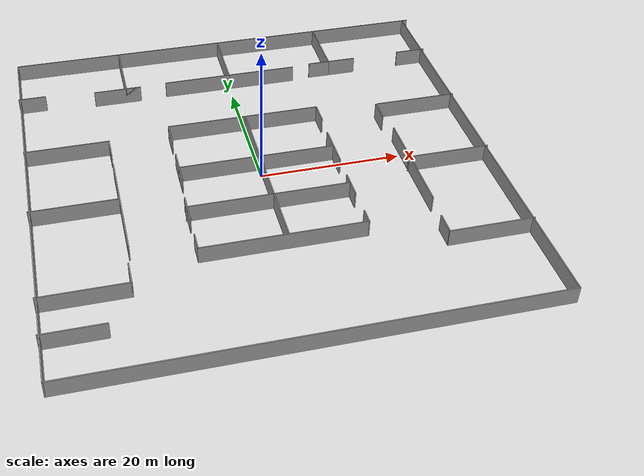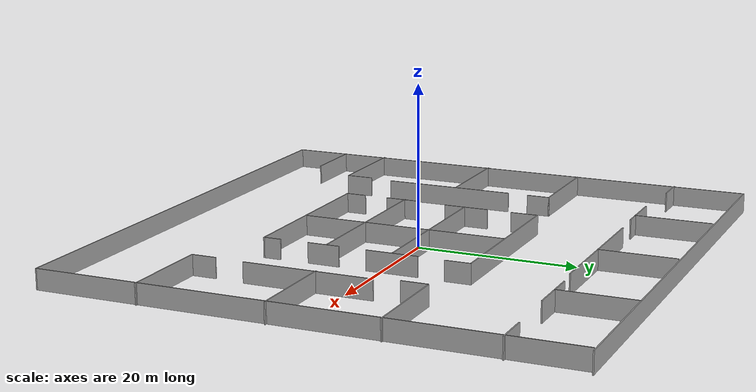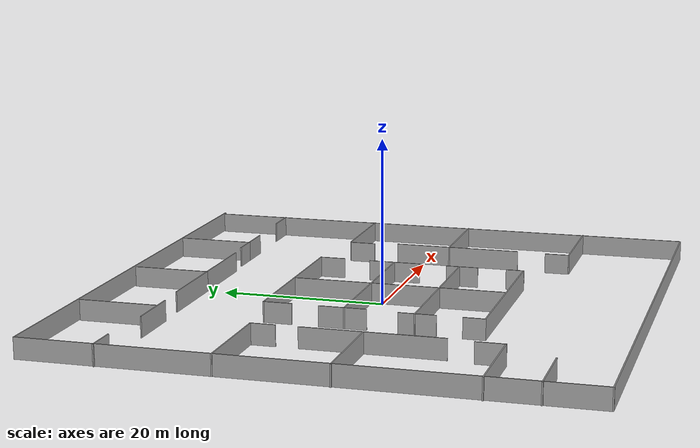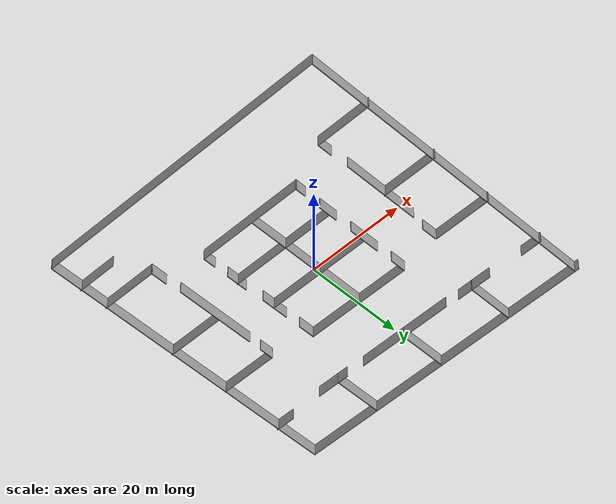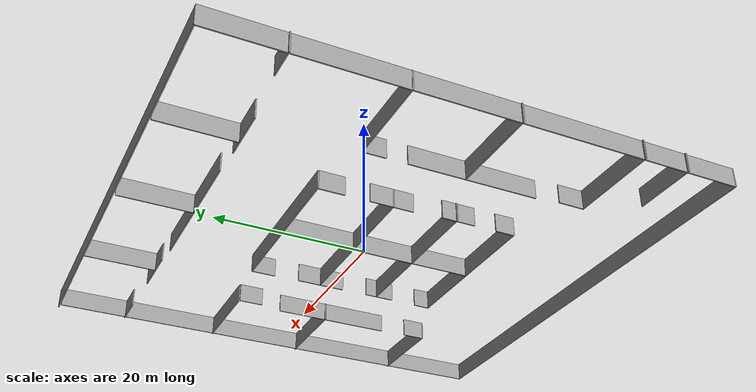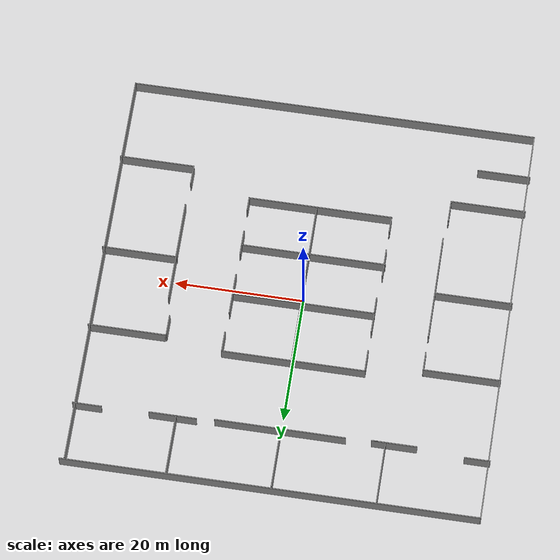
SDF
<?xml version='1.0'?>
<sdf version='1.6'>
  <model name='zc_hall'>
    <pose frame=''>0.197521 0.032452 0 0 -0 0</pose>
    <link name='Wall_1'>
      <collision name='Wall_1_Collision'>
        <geometry>
          <box>
            <size>26 0.15 2.5</size>
          </box>
        </geometry>
        <pose frame=''>0 0 1.25 0 -0 0</pose>
      </collision>
      <visual name='Wall_1_Visual'>
        <pose frame=''>0 0 1.25 0 -0 0</pose>
        <geometry>
          <box>
            <size>26 0.15 2.5</size>
          </box>
        </geometry>
        <material>
          <script>
            <uri>file://media/materials/scripts/gazebo.material</uri>
            <name>Gazebo/Grey</name>
          </script>
          <ambient>1 1 1 1</ambient>
        </material>
      </visual>
      <pose frame=''>-0.046242 -1.88487 0 0 0 -1.5708</pose>
    </link>
    <link name='Wall_10'>
      <collision name='Wall_10_Collision'>
        <geometry>
          <box>
            <size>2.65944 0.15 2.5</size>
          </box>
        </geometry>
        <pose frame=''>0 0 1.25 0 -0 0</pose>
      </collision>
      <visual name='Wall_10_Visual'>
        <pose frame=''>0 0 1.25 0 -0 0</pose>
        <geometry>
          <box>
            <size>2.65944 0.15 2.5</size>
          </box>
        </geometry>
        <material>
          <script>
            <uri>file://media/materials/scripts/gazebo.material</uri>
            <name>Gazebo/Grey</name>
          </script>
          <ambient>1 1 1 1</ambient>
        </material>
      </visual>
      <pose frame=''>-11.7683 -13.7788 0 0 0 -1.5708</pose>
    </link>
    <link name='Wall_12'>
      <collision name='Wall_12_Collision'>
        <geometry>
          <box>
            <size>22.25 0.15 2.5</size>
          </box>
        </geometry>
        <pose frame=''>0 0 1.25 0 -0 0</pose>
      </collision>
      <visual name='Wall_12_Visual'>
        <pose frame=''>0 0 1.25 0 -0 0</pose>
        <geometry>
          <box>
            <size>22.25 0.15 2.5</size>
          </box>
        </geometry>
        <material>
          <script>
            <uri>file://media/materials/scripts/gazebo.material</uri>
            <name>Gazebo/Grey</name>
          </script>
          <ambient>1 1 1 1</ambient>
        </material>
      </visual>
      <pose frame=''>-0.325448 11.0746 0 0 -0 0</pose>
    </link>
    <link name='Wall_13'>
      <collision name='Wall_13_Collision'>
        <geometry>
          <box>
            <size>3.25 0.15 2.5</size>
          </box>
        </geometry>
        <pose frame=''>0 0 1.25 0 -0 0</pose>
      </collision>
      <visual name='Wall_13_Visual'>
        <pose frame=''>0 0 1.25 0 -0 0</pose>
        <geometry>
          <box>
            <size>3.25 0.15 2.5</size>
          </box>
        </geometry>
        <material>
          <script>
            <uri>file://media/materials/scripts/gazebo.material</uri>
            <name>Gazebo/Grey</name>
          </script>
          <ambient>1 1 1 1</ambient>
        </material>
      </visual>
      <pose frame=''>10.7246 9.52459 0 0 0 -1.5708</pose>
    </link>
    <link name='Wall_16'>
      <collision name='Wall_16_Collision'>
        <geometry>
          <box>
            <size>3.5 0.15 2.5</size>
          </box>
        </geometry>
        <pose frame=''>0 0 1.25 0 -0 0</pose>
      </collision>
      <visual name='Wall_16_Visual'>
        <pose frame=''>0 0 1.25 0 -0 0</pose>
        <geometry>
          <box>
            <size>3.5 0.15 2.5</size>
          </box>
        </geometry>
        <material>
          <script>
            <uri>file://media/materials/scripts/gazebo.material</uri>
            <name>Gazebo/Grey</name>
          </script>
          <ambient>1 1 1 1</ambient>
        </material>
      </visual>
      <pose frame=''>-11.3754 9.39959 0 0 0 -1.5708</pose>
    </link>
    <link name='Wall_18'>
      <collision name='Wall_18_Collision'>
        <geometry>
          <box>
            <size>6.5 0.15 2.5</size>
          </box>
        </geometry>
        <pose frame=''>0 0 1.25 0 -0 0</pose>
      </collision>
      <visual name='Wall_18_Visual'>
        <pose frame=''>0 0 1.25 0 -0 0</pose>
        <geometry>
          <box>
            <size>6.5 0.15 2.5</size>
          </box>
        </geometry>
        <material>
          <script>
            <uri>file://media/materials/scripts/gazebo.material</uri>
            <name>Gazebo/Grey</name>
          </script>
          <ambient>1 1 1 1</ambient>
        </material>
      </visual>
      <pose frame=''>10.5781 1.36806 0 0 0 -1.5708</pose>
    </link>
    <link name='Wall_20'>
      <collision name='Wall_20_Collision'>
        <geometry>
          <box>
            <size>4 0.15 2.5</size>
          </box>
        </geometry>
        <pose frame=''>0 0 1.25 0 -0 0</pose>
      </collision>
      <visual name='Wall_20_Visual'>
        <pose frame=''>0 0 1.25 0 -0 0</pose>
        <geometry>
          <box>
            <size>4 0.15 2.5</size>
          </box>
        </geometry>
        <material>
          <script>
            <uri>file://media/materials/scripts/gazebo.material</uri>
            <name>Gazebo/Grey</name>
          </script>
          <ambient>1 1 1 1</ambient>
        </material>
      </visual>
      <pose frame=''>10.5049 -7.32231 0 0 0 -1.5708</pose>
    </link>
    <link name='Wall_22'>
      <collision name='Wall_22_Collision'>
        <geometry>
          <box>
            <size>5.75 0.15 2.5</size>
          </box>
        </geometry>
        <pose frame=''>0 0 1.25 0 -0 0</pose>
      </collision>
      <visual name='Wall_22_Visual'>
        <pose frame=''>0 0 1.25 0 -0 0</pose>
        <geometry>
          <box>
            <size>5.75 0.15 2.5</size>
          </box>
        </geometry>
        <material>
          <script>
            <uri>file://media/materials/scripts/gazebo.material</uri>
            <name>Gazebo/Grey</name>
          </script>
          <ambient>1 1 1 1</ambient>
        </material>
      </visual>
      <pose frame=''>-11.4197 1.61465 0 0 0 -1.5708</pose>
    </link>
    <link name='Wall_24'>
      <collision name='Wall_24_Collision'>
        <geometry>
          <box>
            <size>4.5 0.15 2.5</size>
          </box>
        </geometry>
        <pose frame=''>0 0 1.25 0 -0 0</pose>
      </collision>
      <visual name='Wall_24_Visual'>
        <pose frame=''>0 0 1.25 0 -0 0</pose>
        <geometry>
          <box>
            <size>4.5 0.15 2.5</size>
          </box>
        </geometry>
        <material>
          <script>
            <uri>file://media/materials/scripts/gazebo.material</uri>
            <name>Gazebo/Grey</name>
          </script>
          <ambient>1 1 1 1</ambient>
        </material>
      </visual>
      <pose frame=''>-11.7583 -7.217 0 0 0 -1.5708</pose>
    </link>
    <link name='Wall_26'>
      <collision name='Wall_26_Collision'>
        <geometry>
          <box>
            <size>64 0.15 2.5</size>
          </box>
        </geometry>
        <pose frame=''>0 0 1.25 0 -0 0</pose>
      </collision>
      <visual name='Wall_26_Visual'>
        <pose frame=''>0 0 1.25 0 -0 0</pose>
        <geometry>
          <box>
            <size>64 0.15 2.5</size>
          </box>
        </geometry>
        <material>
          <script>
            <uri>file://media/materials/scripts/gazebo.material</uri>
            <name>Gazebo/Grey</name>
          </script>
          <ambient>1 1 1 1</ambient>
        </material>
      </visual>
      <pose frame=''>31.415 -0.125001 0 0 0 -1.5708</pose>
    </link>
    <link name='Wall_27'>
      <collision name='Wall_27_Collision'>
        <geometry>
          <box>
            <size>63.5 0.15 2.5</size>
          </box>
        </geometry>
        <pose frame=''>0 0 1.25 0 -0 0</pose>
      </collision>
      <visual name='Wall_27_Visual'>
        <pose frame=''>0 0 1.25 0 -0 0</pose>
        <geometry>
          <box>
            <size>63.5 0.15 2.5</size>
          </box>
        </geometry>
        <material>
          <script>
            <uri>file://media/materials/scripts/gazebo.material</uri>
            <name>Gazebo/Grey</name>
          </script>
          <ambient>1 1 1 1</ambient>
        </material>
      </visual>
      <pose frame=''>-0.260013 -32.05 0 0 -0 3.14159</pose>
    </link>
    <link name='Wall_28'>
      <collision name='Wall_28_Collision'>
        <geometry>
          <box>
            <size>64.25 0.15 2.5</size>
          </box>
        </geometry>
        <pose frame=''>0 0 1.25 0 -0 0</pose>
      </collision>
      <visual name='Wall_28_Visual'>
        <pose frame=''>0 0 1.25 0 -0 0</pose>
        <geometry>
          <box>
            <size>64.25 0.15 2.5</size>
          </box>
        </geometry>
        <material>
          <script>
            <uri>file://media/materials/scripts/gazebo.material</uri>
            <name>Gazebo/Grey</name>
          </script>
          <ambient>1 1 1 1</ambient>
        </material>
      </visual>
      <pose frame=''>-31.935 -1e-06 0 0 -0 1.5708</pose>
    </link>
    <link name='Wall_29'>
      <collision name='Wall_29_Collision'>
        <geometry>
          <box>
            <size>64.25 0.15 2.5</size>
          </box>
        </geometry>
        <pose frame=''>0 0 1.25 0 -0 0</pose>
      </collision>
      <visual name='Wall_29_Visual'>
        <pose frame=''>0 0 1.25 0 -0 0</pose>
        <geometry>
          <box>
            <size>64.25 0.15 2.5</size>
          </box>
        </geometry>
        <material>
          <script>
            <uri>file://media/materials/scripts/gazebo.material</uri>
            <name>Gazebo/Grey</name>
          </script>
          <ambient>1 1 1 1</ambient>
        </material>
      </visual>
      <pose frame=''>0.114987 32.05 0 0 -0 0</pose>
    </link>
    <link name='Wall_3'>
      <collision name='Wall_3_Collision'>
        <geometry>
          <box>
            <size>22 0.15 2.5</size>
          </box>
        </geometry>
        <pose frame=''>0 0 1.25 0 -0 0</pose>
      </collision>
      <visual name='Wall_3_Visual'>
        <pose frame=''>0 0 1.25 0 -0 0</pose>
        <geometry>
          <box>
            <size>22 0.15 2.5</size>
          </box>
        </geometry>
        <material>
          <script>
            <uri>file://media/materials/scripts/gazebo.material</uri>
            <name>Gazebo/Grey</name>
          </script>
          <ambient>1 1 1 1</ambient>
        </material>
      </visual>
      <pose frame=''>-0.515428 1.4059 0 0 -0 0</pose>
    </link>
    <link name='Wall_31'>
      <collision name='Wall_31_Collision'>
        <geometry>
          <box>
            <size>9.5 0.15 2.5</size>
          </box>
        </geometry>
        <pose frame=''>0 0 1.25 0 -0 0</pose>
      </collision>
      <visual name='Wall_31_Visual'>
        <pose frame=''>0 0 1.25 0 -0 0</pose>
        <geometry>
          <box>
            <size>9.5 0.15 2.5</size>
          </box>
        </geometry>
        <material>
          <script>
            <uri>file://media/materials/scripts/gazebo.material</uri>
            <name>Gazebo/Grey</name>
          </script>
          <ambient>1 1 1 1</ambient>
        </material>
      </visual>
      <pose frame=''>-0.150979 27.031 0 0 0 -1.5708</pose>
    </link>
    <link name='Wall_32'>
      <collision name='Wall_32_Collision'>
        <geometry>
          <box>
            <size>10.25 0.15 2.5</size>
          </box>
        </geometry>
        <pose frame=''>0 0 1.25 0 -0 0</pose>
      </collision>
      <visual name='Wall_32_Visual'>
        <pose frame=''>0 0 1.25 0 -0 0</pose>
        <geometry>
          <box>
            <size>10.25 0.15 2.5</size>
          </box>
        </geometry>
        <material>
          <script>
            <uri>file://media/materials/scripts/gazebo.material</uri>
            <name>Gazebo/Grey</name>
          </script>
          <ambient>1 1 1 1</ambient>
        </material>
      </visual>
      <pose frame=''>4.89902 22.356 0 0 -0 0</pose>
    </link>
    <link name='Wall_34'>
      <collision name='Wall_34_Collision'>
        <geometry>
          <box>
            <size>10 0.15 2.5</size>
          </box>
        </geometry>
        <pose frame=''>0 0 1.25 0 -0 0</pose>
      </collision>
      <visual name='Wall_34_Visual'>
        <pose frame=''>0 0 1.25 0 -0 0</pose>
        <geometry>
          <box>
            <size>10 0.15 2.5</size>
          </box>
        </geometry>
        <material>
          <script>
            <uri>file://media/materials/scripts/gazebo.material</uri>
            <name>Gazebo/Grey</name>
          </script>
          <ambient>1 1 1 1</ambient>
        </material>
      </visual>
      <pose frame=''>-5.07598 22.356 0 0 -0 3.14159</pose>
    </link>
    <link name='Wall_36'>
      <collision name='Wall_36_Collision'>
        <geometry>
          <box>
            <size>9.5 0.15 2.5</size>
          </box>
        </geometry>
        <pose frame=''>0 0 1.25 0 -0 0</pose>
      </collision>
      <visual name='Wall_36_Visual'>
        <pose frame=''>0 0 1.25 0 -0 0</pose>
        <geometry>
          <box>
            <size>9.5 0.15 2.5</size>
          </box>
        </geometry>
        <material>
          <script>
            <uri>file://media/materials/scripts/gazebo.material</uri>
            <name>Gazebo/Grey</name>
          </script>
          <ambient>1 1 1 1</ambient>
        </material>
      </visual>
      <pose frame=''>15.9117 27.313 0 0 0 -1.5708</pose>
    </link>
    <link name='Wall_37'>
      <collision name='Wall_37_Collision'>
        <geometry>
          <box>
            <size>3.25 0.15 2.5</size>
          </box>
        </geometry>
        <pose frame=''>0 0 1.25 0 -0 0</pose>
      </collision>
      <visual name='Wall_37_Visual'>
        <pose frame=''>0 0 1.25 0 -0 0</pose>
        <geometry>
          <box>
            <size>3.25 0.15 2.5</size>
          </box>
        </geometry>
        <material>
          <script>
            <uri>file://media/materials/scripts/gazebo.material</uri>
            <name>Gazebo/Grey</name>
          </script>
          <ambient>1 1 1 1</ambient>
        </material>
      </visual>
      <pose frame=''>14.3617 22.638 0 0 -0 3.14159</pose>
    </link>
    <link name='Wall_39'>
      <collision name='Wall_39_Collision'>
        <geometry>
          <box>
            <size>4.25 0.15 2.5</size>
          </box>
        </geometry>
        <pose frame=''>0 0 1.25 0 -0 0</pose>
      </collision>
      <visual name='Wall_39_Visual'>
        <pose frame=''>0 0 1.25 0 -0 0</pose>
        <geometry>
          <box>
            <size>4.25 0.15 2.5</size>
          </box>
        </geometry>
        <material>
          <script>
            <uri>file://media/materials/scripts/gazebo.material</uri>
            <name>Gazebo/Grey</name>
          </script>
          <ambient>1 1 1 1</ambient>
        </material>
      </visual>
      <pose frame=''>17.9617 22.638 0 0 -0 0</pose>
    </link>
    <link name='Wall_46'>
      <collision name='Wall_46_Collision'>
        <geometry>
          <box>
            <size>9.75 0.15 2.5</size>
          </box>
        </geometry>
        <pose frame=''>0 0 1.25 0 -0 0</pose>
      </collision>
      <visual name='Wall_46_Visual'>
        <pose frame=''>0 0 1.25 0 -0 0</pose>
        <geometry>
          <box>
            <size>9.75 0.15 2.5</size>
          </box>
        </geometry>
        <material>
          <script>
            <uri>file://media/materials/scripts/gazebo.material</uri>
            <name>Gazebo/Grey</name>
          </script>
          <ambient>1 1 1 1</ambient>
        </material>
      </visual>
      <pose frame=''>-16.1395 26.9702 0 0 0 -1.5708</pose>
    </link>
    <link name='Wall_47'>
      <collision name='Wall_47_Collision'>
        <geometry>
          <box>
            <size>2.25 0.15 2.5</size>
          </box>
        </geometry>
        <pose frame=''>0 0 1.25 0 -0 0</pose>
      </collision>
      <visual name='Wall_47_Visual'>
        <pose frame=''>0 0 1.25 0 -0 0</pose>
        <geometry>
          <box>
            <size>2.25 0.15 2.5</size>
          </box>
        </geometry>
        <material>
          <script>
            <uri>file://media/materials/scripts/gazebo.material</uri>
            <name>Gazebo/Grey</name>
          </script>
          <ambient>1 1 1 1</ambient>
        </material>
      </visual>
      <pose frame=''>-15.0896 22.1702 0 0 -0 0</pose>
    </link>
    <link name='Wall_48'>
      <collision name='Wall_48_Collision'>
        <geometry>
          <box>
            <size>7 0.15 2.5</size>
          </box>
        </geometry>
        <pose frame=''>0 0 1.25 0 -0 0</pose>
      </collision>
      <visual name='Wall_48_Visual'>
        <pose frame=''>0 0 1.25 0 -0 0</pose>
        <geometry>
          <box>
            <size>7 0.15 2.5</size>
          </box>
        </geometry>
        <material>
          <script>
            <uri>file://media/materials/scripts/gazebo.material</uri>
            <name>Gazebo/Grey</name>
          </script>
          <ambient>1 1 1 1</ambient>
        </material>
      </visual>
      <pose frame=''>-17.4645 22.1702 0 0 -0 3.14159</pose>
    </link>
    <link name='Wall_5'>
      <collision name='Wall_5_Collision'>
        <geometry>
          <box>
            <size>22.5 0.15 2.5</size>
          </box>
        </geometry>
        <pose frame=''>0 0 1.25 0 -0 0</pose>
      </collision>
      <visual name='Wall_5_Visual'>
        <pose frame=''>0 0 1.25 0 -0 0</pose>
        <geometry>
          <box>
            <size>22.5 0.15 2.5</size>
          </box>
        </geometry>
        <material>
          <script>
            <uri>file://media/materials/scripts/gazebo.material</uri>
            <name>Gazebo/Grey</name>
          </script>
          <ambient>1 1 1 1</ambient>
        </material>
      </visual>
      <pose frame=''>-0.733551 -6.95597 0 0 -0 0</pose>
    </link>
    <link name='Wall_51'>
      <collision name='Wall_51_Collision'>
        <geometry>
          <box>
            <size>4 0.15 2.5</size>
          </box>
        </geometry>
        <pose frame=''>0 0 1.25 0 -0 0</pose>
      </collision>
      <visual name='Wall_51_Visual'>
        <pose frame=''>0 0 1.25 0 -0 0</pose>
        <geometry>
          <box>
            <size>4 0.15 2.5</size>
          </box>
        </geometry>
        <material>
          <script>
            <uri>file://media/materials/scripts/gazebo.material</uri>
            <name>Gazebo/Grey</name>
          </script>
          <ambient>1 1 1 1</ambient>
        </material>
      </visual>
      <pose frame=''>-30.2056 22.7943 0 0 -0 0</pose>
    </link>
    <link name='Wall_53'>
      <collision name='Wall_53_Collision'>
        <geometry>
          <box>
            <size>4.5 0.15 2.5</size>
          </box>
        </geometry>
        <pose frame=''>0 0 1.25 0 -0 0</pose>
      </collision>
      <visual name='Wall_53_Visual'>
        <pose frame=''>0 0 1.25 0 -0 0</pose>
        <geometry>
          <box>
            <size>4.5 0.15 2.5</size>
          </box>
        </geometry>
        <material>
          <script>
            <uri>file://media/materials/scripts/gazebo.material</uri>
            <name>Gazebo/Grey</name>
          </script>
          <ambient>1 1 1 1</ambient>
        </material>
      </visual>
      <pose frame=''>29.5629 22.8226 0 0 -0 3.14159</pose>
    </link>
    <link name='Wall_55'>
      <collision name='Wall_55_Collision'>
        <geometry>
          <box>
            <size>16 0.15 2.5</size>
          </box>
        </geometry>
        <pose frame=''>0 0 1.25 0 -0 0</pose>
      </collision>
      <visual name='Wall_55_Visual'>
        <pose frame=''>0 0 1.25 0 -0 0</pose>
        <geometry>
          <box>
            <size>16 0.15 2.5</size>
          </box>
        </geometry>
        <material>
          <script>
            <uri>file://media/materials/scripts/gazebo.material</uri>
            <name>Gazebo/Grey</name>
          </script>
          <ambient>1 1 1 1</ambient>
        </material>
      </visual>
      <pose frame=''>20.2223 -4.45483 0 0 0 -1.5708</pose>
    </link>
    <link name='Wall_57'>
      <collision name='Wall_57_Collision'>
        <geometry>
          <box>
            <size>11.75 0.15 2.5</size>
          </box>
        </geometry>
        <pose frame=''>0 0 1.25 0 -0 0</pose>
      </collision>
      <visual name='Wall_57_Visual'>
        <pose frame=''>0 0 1.25 0 -0 0</pose>
        <geometry>
          <box>
            <size>11.75 0.15 2.5</size>
          </box>
        </geometry>
        <material>
          <script>
            <uri>file://media/materials/scripts/gazebo.material</uri>
            <name>Gazebo/Grey</name>
          </script>
          <ambient>1 1 1 1</ambient>
        </material>
      </visual>
      <pose frame=''>25.8974 -3.42518 0 0 -0 3.14159</pose>
    </link>
    <link name='Wall_59'>
      <collision name='Wall_59_Collision'>
        <geometry>
          <box>
            <size>12 0.15 2.5</size>
          </box>
        </geometry>
        <pose frame=''>0 0 1.25 0 -0 0</pose>
      </collision>
      <visual name='Wall_59_Visual'>
        <pose frame=''>0 0 1.25 0 -0 0</pose>
        <geometry>
          <box>
            <size>12 0.15 2.5</size>
          </box>
        </geometry>
        <material>
          <script>
            <uri>file://media/materials/scripts/gazebo.material</uri>
            <name>Gazebo/Grey</name>
          </script>
          <ambient>1 1 1 1</ambient>
        </material>
      </visual>
      <pose frame=''>25.7027 9.77186 0 0 -0 3.14159</pose>
    </link>
    <link name='Wall_62'>
      <collision name='Wall_62_Collision'>
        <geometry>
          <box>
            <size>3.25 0.15 2.5</size>
          </box>
        </geometry>
        <pose frame=''>0 0 1.25 0 -0 0</pose>
      </collision>
      <visual name='Wall_62_Visual'>
        <pose frame=''>0 0 1.25 0 -0 0</pose>
        <geometry>
          <box>
            <size>3.25 0.15 2.5</size>
          </box>
        </geometry>
        <material>
          <script>
            <uri>file://media/materials/scripts/gazebo.material</uri>
            <name>Gazebo/Grey</name>
          </script>
          <ambient>1 1 1 1</ambient>
        </material>
      </visual>
      <pose frame=''>19.5463 8.08763 0 0 0 -1.5708</pose>
    </link>
    <link name='Wall_64'>
      <collision name='Wall_64_Collision'>
        <geometry>
          <box>
            <size>3 0.15 2.5</size>
          </box>
        </geometry>
        <pose frame=''>0 0 1.25 0 -0 0</pose>
      </collision>
      <visual name='Wall_64_Visual'>
        <pose frame=''>0 0 1.25 0 -0 0</pose>
        <geometry>
          <box>
            <size>3 0.15 2.5</size>
          </box>
        </geometry>
        <material>
          <script>
            <uri>file://media/materials/scripts/gazebo.material</uri>
            <name>Gazebo/Grey</name>
          </script>
          <ambient>1 1 1 1</ambient>
        </material>
      </visual>
      <pose frame=''>19.9888 -17.5506 0 0 0 -1.5708</pose>
    </link>
    <link name='Wall_66'>
      <collision name='Wall_66_Collision'>
        <geometry>
          <box>
            <size>11.75 0.15 2.5</size>
          </box>
        </geometry>
        <pose frame=''>0 0 1.25 0 -0 0</pose>
      </collision>
      <visual name='Wall_66_Visual'>
        <pose frame=''>0 0 1.25 0 -0 0</pose>
        <geometry>
          <box>
            <size>11.75 0.15 2.5</size>
          </box>
        </geometry>
        <material>
          <script>
            <uri>file://media/materials/scripts/gazebo.material</uri>
            <name>Gazebo/Grey</name>
          </script>
          <ambient>1 1 1 1</ambient>
        </material>
      </visual>
      <pose frame=''>25.8108 -19.1152 0 0 -0 3.14159</pose>
    </link>
    <link name='Wall_68'>
      <collision name='Wall_68_Collision'>
        <geometry>
          <box>
            <size>16.75 0.15 2.5</size>
          </box>
        </geometry>
        <pose frame=''>0 0 1.25 0 -0 0</pose>
      </collision>
      <visual name='Wall_68_Visual'>
        <pose frame=''>0 0 1.25 0 -0 0</pose>
        <geometry>
          <box>
            <size>16.75 0.15 2.5</size>
          </box>
        </geometry>
        <material>
          <script>
            <uri>file://media/materials/scripts/gazebo.material</uri>
            <name>Gazebo/Grey</name>
          </script>
          <ambient>1 1 1 1</ambient>
        </material>
      </visual>
      <pose frame=''>-20.1663 -4.34889 0 0 0 -1.5708</pose>
    </link>
    <link name='Wall_7'>
      <collision name='Wall_7_Collision'>
        <geometry>
          <box>
            <size>22.5 0.15 2.5</size>
          </box>
        </geometry>
        <pose frame=''>0 0 1.25 0 -0 0</pose>
      </collision>
      <visual name='Wall_7_Visual'>
        <pose frame=''>0 0 1.25 0 -0 0</pose>
        <geometry>
          <box>
            <size>22.5 0.15 2.5</size>
          </box>
        </geometry>
        <material>
          <script>
            <uri>file://media/materials/scripts/gazebo.material</uri>
            <name>Gazebo/Grey</name>
          </script>
          <ambient>1 1 1 1</ambient>
        </material>
      </visual>
      <pose frame=''>-0.593251 -15.0336 0 0 -0 0</pose>
    </link>
    <link name='Wall_70'>
      <collision name='Wall_70_Collision'>
        <geometry>
          <box>
            <size>12 0.15 2.5</size>
          </box>
        </geometry>
        <pose frame=''>0 0 1.25 0 -0 0</pose>
      </collision>
      <visual name='Wall_70_Visual'>
        <pose frame=''>0 0 1.25 0 -0 0</pose>
        <geometry>
          <box>
            <size>12 0.15 2.5</size>
          </box>
        </geometry>
        <material>
          <script>
            <uri>file://media/materials/scripts/gazebo.material</uri>
            <name>Gazebo/Grey</name>
          </script>
          <ambient>1 1 1 1</ambient>
        </material>
      </visual>
      <pose frame=''>-26.2144 -3.3658 0 0 -0 0</pose>
    </link>
    <link name='Wall_73'>
      <collision name='Wall_73_Collision'>
        <geometry>
          <box>
            <size>12 0.15 2.5</size>
          </box>
        </geometry>
        <pose frame=''>0 0 1.25 0 -0 0</pose>
      </collision>
      <visual name='Wall_73_Visual'>
        <pose frame=''>0 0 1.25 0 -0 0</pose>
        <geometry>
          <box>
            <size>12 0.15 2.5</size>
          </box>
        </geometry>
        <material>
          <script>
            <uri>file://media/materials/scripts/gazebo.material</uri>
            <name>Gazebo/Grey</name>
          </script>
          <ambient>1 1 1 1</ambient>
        </material>
      </visual>
      <pose frame=''>-26.0754 9.54881 0 0 -0 0</pose>
    </link>
    <link name='Wall_74'>
      <collision name='Wall_74_Collision'>
        <geometry>
          <box>
            <size>3 0.15 2.5</size>
          </box>
        </geometry>
        <pose frame=''>0 0 1.25 0 -0 0</pose>
      </collision>
      <visual name='Wall_74_Visual'>
        <pose frame=''>0 0 1.25 0 -0 0</pose>
        <geometry>
          <box>
            <size>3 0.15 2.5</size>
          </box>
        </geometry>
        <material>
          <script>
            <uri>file://media/materials/scripts/gazebo.material</uri>
            <name>Gazebo/Grey</name>
          </script>
          <ambient>1 1 1 1</ambient>
        </material>
      </visual>
      <pose frame=''>-20.1504 8.12381 0 0 0 -1.5708</pose>
    </link>
    <link name='Wall_76'>
      <collision name='Wall_76_Collision'>
        <geometry>
          <box>
            <size>11.75 0.15 2.5</size>
          </box>
        </geometry>
        <pose frame=''>0 0 1.25 0 -0 0</pose>
      </collision>
      <visual name='Wall_76_Visual'>
        <pose frame=''>0 0 1.25 0 -0 0</pose>
        <geometry>
          <box>
            <size>11.75 0.15 2.5</size>
          </box>
        </geometry>
        <material>
          <script>
            <uri>file://media/materials/scripts/gazebo.material</uri>
            <name>Gazebo/Grey</name>
          </script>
          <ambient>1 1 1 1</ambient>
        </material>
      </visual>
      <pose frame=''>-26.365 -19.132 0 0 -0 0</pose>
    </link>
    <link name='Wall_77'>
      <collision name='Wall_77_Collision'>
        <geometry>
          <box>
            <size>3.5 0.15 2.5</size>
          </box>
        </geometry>
        <pose frame=''>0 0 1.25 0 -0 0</pose>
      </collision>
      <visual name='Wall_77_Visual'>
        <pose frame=''>0 0 1.25 0 -0 0</pose>
        <geometry>
          <box>
            <size>3.5 0.15 2.5</size>
          </box>
        </geometry>
        <material>
          <script>
            <uri>file://media/materials/scripts/gazebo.material</uri>
            <name>Gazebo/Grey</name>
          </script>
          <ambient>1 1 1 1</ambient>
        </material>
      </visual>
      <pose frame=''>-20.565 -17.457 0 0 -0 1.5708</pose>
    </link>
    <link name='Wall_79'>
      <collision name='Wall_79_Collision'>
        <geometry>
          <box>
            <size>8.25 0.15 2.5</size>
          </box>
        </geometry>
        <pose frame=''>0 0 1.25 0 -0 0</pose>
      </collision>
      <visual name='Wall_79_Visual'>
        <pose frame=''>0 0 1.25 0 -0 0</pose>
        <geometry>
          <box>
            <size>8.25 0.15 2.5</size>
          </box>
        </geometry>
        <material>
          <script>
            <uri>file://media/materials/scripts/gazebo.material</uri>
            <name>Gazebo/Grey</name>
          </script>
          <ambient>1 1 1 1</ambient>
        </material>
      </visual>
      <pose frame=''>-28.086 -25.072 0 0 -0 0</pose>
    </link>
    <link name='Wall_8'>
      <collision name='Wall_8_Collision'>
        <geometry>
          <box>
            <size>2.25 0.15 2.5</size>
          </box>
        </geometry>
        <pose frame=''>0 0 1.25 0 -0 0</pose>
      </collision>
      <visual name='Wall_8_Visual'>
        <pose frame=''>0 0 1.25 0 -0 0</pose>
        <geometry>
          <box>
            <size>2.25 0.15 2.5</size>
          </box>
        </geometry>
        <material>
          <script>
            <uri>file://media/materials/scripts/gazebo.material</uri>
            <name>Gazebo/Grey</name>
          </script>
          <ambient>1 1 1 1</ambient>
        </material>
      </visual>
      <pose frame=''>10.5817 -13.9836 0 0 -0 1.5708</pose>
    </link>
    <static>1</static>
  </model>
</sdf>
